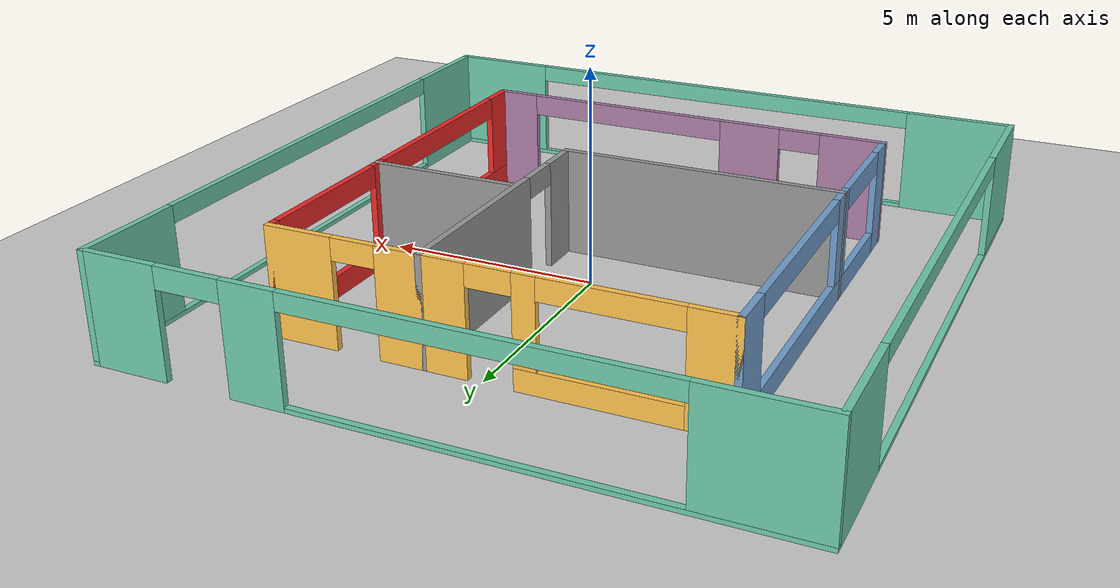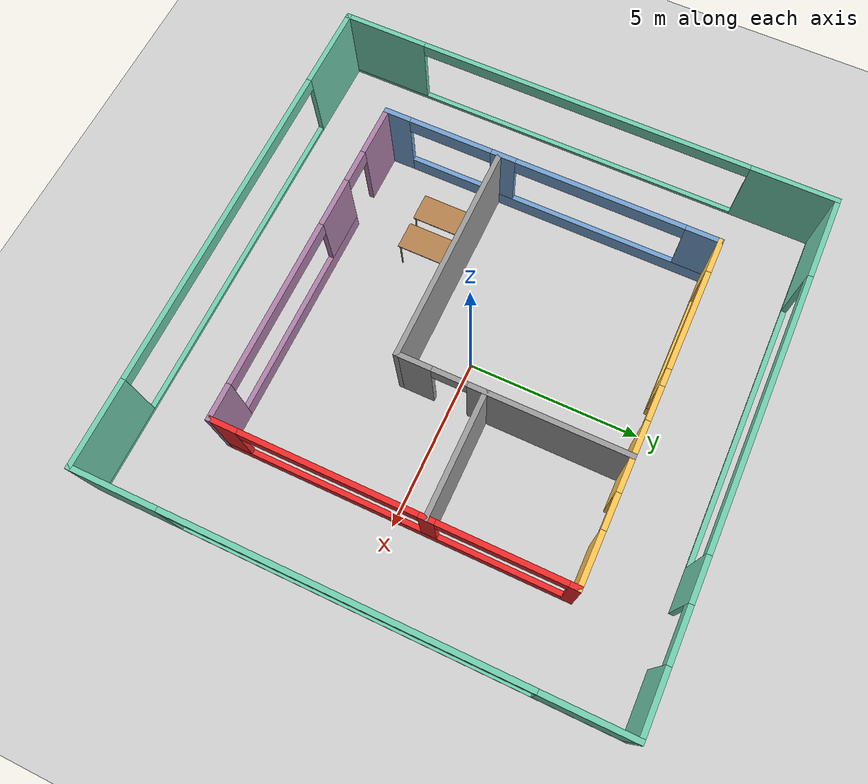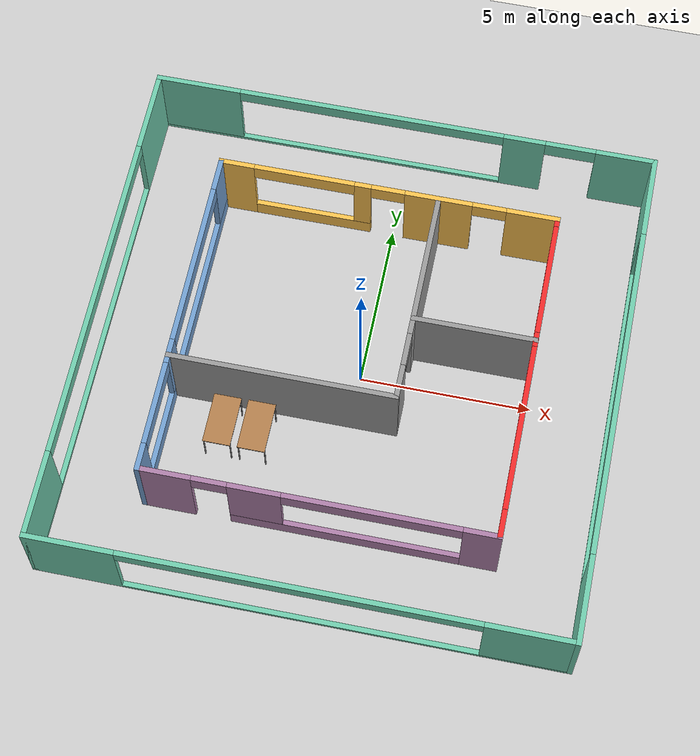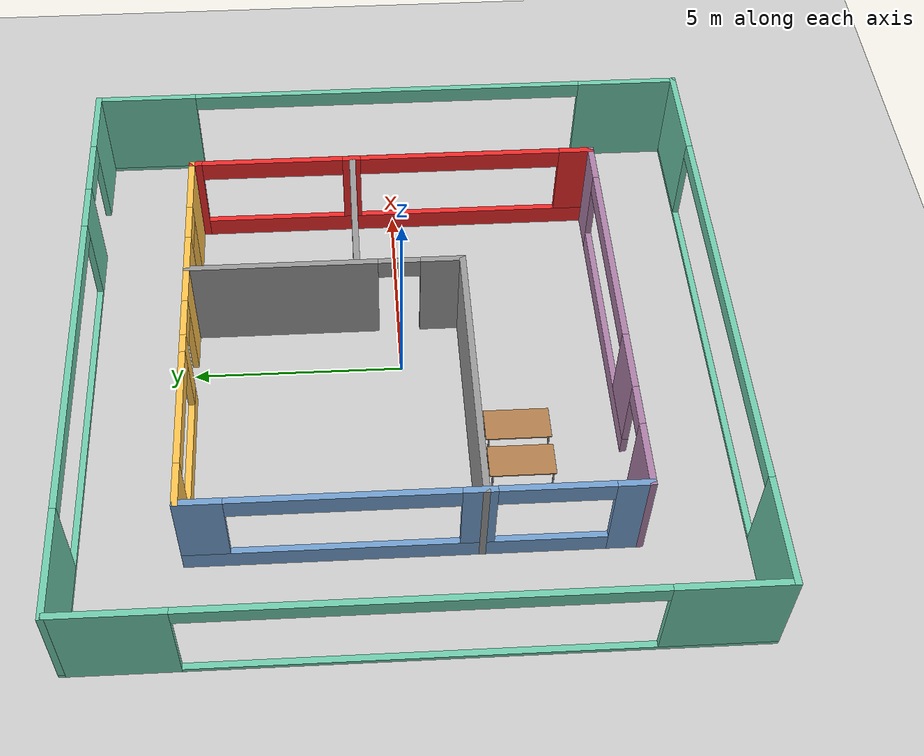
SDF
<sdf version="1.6">
 <world name="default">
  <model name="ground_plane">
   <static>1</static>
   <link name="link">
    <collision name="collision">
     <geometry><plane><normal>0 0 1</normal><size>100 100</size></plane></geometry>
     <surface>
      <contact><collide_bitmask>65535</collide_bitmask></contact>
      <friction><ode><mu>100</mu><mu2>50</mu2></ode></friction>
     </surface>
    </collision>
    <visual name="visual">
     <cast_shadows>0</cast_shadows>
     <geometry><plane><normal>0 0 1</normal><size>100 100</size></plane></geometry>
     <material>
      <script><uri>file://media/materials/scripts/gazebo.material</uri><name>Gazebo/Grey</name></script>
     </material>
    </visual>
   </link>
  </model>
  <model name="model_0">
   <pose>-0.195601 0 0 0 -0 0</pose>
   <link name="Wall_11">
    <pose>0 5 0 0 -0 0</pose>
    <visual name="Wall_11_Visual_0">
     <pose>-4.5375 0 1.25 0 -0 0</pose>
     <geometry><box><size>1.075 0.15 2.5</size></box></geometry>
     <material>
      <script><uri>file://media/materials/scripts/gazebo.material</uri><name>Gazebo/Grey</name></script>
      <ambient>1 0.764706 0.305882 1</ambient>
     </material>
     <meta><layer>0</layer></meta>
    </visual>
    <collision name="Wall_11_Collision_0">
     <geometry><box><size>1.075 0.15 2.5</size></box></geometry>
     <pose>-4.5375 0 1.25 0 -0 0</pose>
    </collision>
    <visual name="Wall_11_Visual_1">
     <pose>1.5 0 1.25 0 -0 0</pose>
     <geometry><box><size>2 0.15 2.5</size></box></geometry>
     <material>
      <script><uri>file://media/materials/scripts/gazebo.material</uri><name>Gazebo/Grey</name></script>
      <ambient>1 0.764706 0.305882 1</ambient>
     </material>
     <meta><layer>0</layer></meta>
    </visual>
    <collision name="Wall_11_Collision_1">
     <geometry><box><size>2 0.15 2.5</size></box></geometry>
     <pose>1.5 0 1.25 0 -0 0</pose>
    </collision>
    <visual name="Wall_11_Visual_2">
     <pose>4.2875 0 1.25 0 -0 0</pose>
     <geometry><box><size>1.575 0.15 2.5</size></box></geometry>
     <material>
      <script><uri>file://media/materials/scripts/gazebo.material</uri><name>Gazebo/Grey</name></script>
      <ambient>1 0.764706 0.305882 1</ambient>
     </material>
     <meta><layer>0</layer></meta>
    </visual>
    <collision name="Wall_11_Collision_2">
     <geometry><box><size>1.575 0.15 2.5</size></box></geometry>
     <pose>4.2875 0 1.25 0 -0 0</pose>
    </collision>
    <visual name="Wall_11_Visual_3">
     <pose>-2.25 0 0.25 0 -0 0</pose>
     <geometry><box><size>3.5 0.15 0.5</size></box></geometry>
     <material>
      <script><uri>file://media/materials/scripts/gazebo.material</uri><name>Gazebo/Grey</name></script>
      <ambient>1 0.764706 0.305882 1</ambient>
     </material>
     <meta><layer>0</layer></meta>
    </visual>
    <collision name="Wall_11_Collision_3">
     <geometry><box><size>3.5 0.15 0.5</size></box></geometry>
     <pose>-2.25 0 0.25 0 -0 0</pose>
    </collision>
    <visual name="Wall_11_Visual_4">
     <pose>-0.75 0 1.5 0 -0 0</pose>
     <geometry><box><size>0.5 0.15 2</size></box></geometry>
     <material>
      <script><uri>file://media/materials/scripts/gazebo.material</uri><name>Gazebo/Grey</name></script>
      <ambient>1 0.764706 0.305882 1</ambient>
     </material>
     <meta><layer>0</layer></meta>
    </visual>
    <collision name="Wall_11_Collision_4">
     <geometry><box><size>0.5 0.15 2</size></box></geometry>
     <pose>-0.75 0 1.5 0 -0 0</pose>
    </collision>
    <visual name="Wall_11_Visual_5">
     <pose>-2.5 0 2.25 0 -0 0</pose>
     <geometry><box><size>3 0.15 0.5</size></box></geometry>
     <material>
      <script><uri>file://media/materials/scripts/gazebo.material</uri><name>Gazebo/Grey</name></script>
      <ambient>1 0.764706 0.305882 1</ambient>
     </material>
     <meta><layer>0</layer></meta>
    </visual>
    <collision name="Wall_11_Collision_5">
     <geometry><box><size>3 0.15 0.5</size></box></geometry>
     <pose>-2.5 0 2.25 0 -0 0</pose>
    </collision>
    <visual name="Wall_11_Visual_6">
     <pose>3 0 2.25 0 -0 0</pose>
     <geometry><box><size>1 0.15 0.5</size></box></geometry>
     <material>
      <script><uri>file://media/materials/scripts/gazebo.material</uri><name>Gazebo/Grey</name></script>
      <ambient>1 0.764706 0.305882 1</ambient>
     </material>
     <meta><layer>0</layer></meta>
    </visual>
    <collision name="Wall_11_Collision_6">
     <geometry><box><size>1 0.15 0.5</size></box></geometry>
     <pose>3 0 2.25 0 -0 0</pose>
    </collision>
    <visual name="Wall_11_Visual_7">
     <pose>0 0 2.25 0 -0 0</pose>
     <geometry><box><size>1 0.15 0.5</size></box></geometry>
     <material>
      <script><uri>file://media/materials/scripts/gazebo.material</uri><name>Gazebo/Grey</name></script>
      <ambient>1 0.764706 0.305882 1</ambient>
     </material>
     <meta><layer>0</layer></meta>
    </visual>
    <collision name="Wall_11_Collision_7">
     <geometry><box><size>1 0.15 0.5</size></box></geometry>
     <pose>0 0 2.25 0 -0 0</pose>
    </collision>
   </link>
   <link name="Wall_12">
    <pose>5 0 0 0 -0 -1.5708</pose>
    <visual name="Wall_12_Visual_0">
     <pose>-4.9125 0 1.25 0 -0 0</pose>
     <geometry><box><size>0.325 0.15 2.5</size></box></geometry>
     <material>
      <script><uri>file://media/materials/scripts/gazebo.material</uri><name>Gazebo/Grey</name></script>
      <ambient>0.937255 0.160784 0.160784 1</ambient>
     </material>
     <meta><layer>0</layer></meta>
    </visual>
    <collision name="Wall_12_Collision_0">
     <geometry><box><size>0.325 0.15 2.5</size></box></geometry>
     <pose>-4.9125 0 1.25 0 -0 0</pose>
    </collision>
    <visual name="Wall_12_Visual_1">
     <pose>0.1625 0 0.25 0 -0 0</pose>
     <geometry><box><size>9.825 0.15 0.5</size></box></geometry>
     <material>
      <script><uri>file://media/materials/scripts/gazebo.material</uri><name>Gazebo/Grey</name></script>
      <ambient>0.937255 0.160784 0.160784 1</ambient>
     </material>
     <meta><layer>0</layer></meta>
    </visual>
    <collision name="Wall_12_Collision_1">
     <geometry><box><size>9.825 0.15 0.5</size></box></geometry>
     <pose>0.1625 0 0.25 0 -0 0</pose>
    </collision>
    <visual name="Wall_12_Visual_2">
     <pose>-1.025 0 1.5 0 -0 0</pose>
     <geometry><box><size>0.45 0.15 2</size></box></geometry>
     <material>
      <script><uri>file://media/materials/scripts/gazebo.material</uri><name>Gazebo/Grey</name></script>
      <ambient>0.937255 0.160784 0.160784 1</ambient>
     </material>
     <meta><layer>0</layer></meta>
    </visual>
    <collision name="Wall_12_Collision_2">
     <geometry><box><size>0.45 0.15 2</size></box></geometry>
     <pose>-1.025 0 1.5 0 -0 0</pose>
    </collision>
    <visual name="Wall_12_Visual_3">
     <pose>4.6375 0 1.5 0 -0 0</pose>
     <geometry><box><size>0.875 0.15 2</size></box></geometry>
     <material>
      <script><uri>file://media/materials/scripts/gazebo.material</uri><name>Gazebo/Grey</name></script>
      <ambient>0.937255 0.160784 0.160784 1</ambient>
     </material>
     <meta><layer>0</layer></meta>
    </visual>
    <collision name="Wall_12_Collision_3">
     <geometry><box><size>0.875 0.15 2</size></box></geometry>
     <pose>4.6375 0 1.5 0 -0 0</pose>
    </collision>
    <visual name="Wall_12_Visual_4">
     <pose>-3 0 2.25 0 -0 0</pose>
     <geometry><box><size>3.5 0.15 0.5</size></box></geometry>
     <material>
      <script><uri>file://media/materials/scripts/gazebo.material</uri><name>Gazebo/Grey</name></script>
      <ambient>0.937255 0.160784 0.160784 1</ambient>
     </material>
     <meta><layer>0</layer></meta>
    </visual>
    <collision name="Wall_12_Collision_4">
     <geometry><box><size>3.5 0.15 0.5</size></box></geometry>
     <pose>-3 0 2.25 0 -0 0</pose>
    </collision>
    <visual name="Wall_12_Visual_5">
     <pose>1.7 0 2.25 0 -0 0</pose>
     <geometry><box><size>5 0.15 0.5</size></box></geometry>
     <material>
      <script><uri>file://media/materials/scripts/gazebo.material</uri><name>Gazebo/Grey</name></script>
      <ambient>0.937255 0.160784 0.160784 1</ambient>
     </material>
     <meta><layer>0</layer></meta>
    </visual>
    <collision name="Wall_12_Collision_5">
     <geometry><box><size>5 0.15 0.5</size></box></geometry>
     <pose>1.7 0 2.25 0 -0 0</pose>
    </collision>
   </link>
   <link name="Wall_13">
    <pose>0 -5 0 0 -0 3.14159</pose>
    <visual name="Wall_13_Visual_0">
     <pose>-4.5375 0 1.25 0 -0 0</pose>
     <geometry><box><size>1.075 0.15 2.5</size></box></geometry>
     <material>
      <script><uri>file://media/materials/scripts/gazebo.material</uri><name>Gazebo/Grey</name></script>
      <ambient>0.678431 0.498039 0.658824 1</ambient>
     </material>
     <meta><layer>0</layer></meta>
    </visual>
    <collision name="Wall_13_Collision_0">
     <geometry><box><size>1.075 0.15 2.5</size></box></geometry>
     <pose>-4.5375 0 1.25 0 -0 0</pose>
    </collision>
    <visual name="Wall_13_Visual_1">
     <pose>4.2875 0 1.25 0 -0 0</pose>
     <geometry><box><size>1.575 0.15 2.5</size></box></geometry>
     <material>
      <script><uri>file://media/materials/scripts/gazebo.material</uri><name>Gazebo/Grey</name></script>
      <ambient>0.678431 0.498039 0.658824 1</ambient>
     </material>
     <meta><layer>0</layer></meta>
    </visual>
    <collision name="Wall_13_Collision_1">
     <geometry><box><size>1.575 0.15 2.5</size></box></geometry>
     <pose>4.2875 0 1.25 0 -0 0</pose>
    </collision>
    <visual name="Wall_13_Visual_2">
     <pose>-0.75 0 0.25 0 -0 0</pose>
     <geometry><box><size>6.5 0.15 0.5</size></box></geometry>
     <material>
      <script><uri>file://media/materials/scripts/gazebo.material</uri><name>Gazebo/Grey</name></script>
      <ambient>0.678431 0.498039 0.658824 1</ambient>
     </material>
     <meta><layer>0</layer></meta>
    </visual>
    <collision name="Wall_13_Collision_2">
     <geometry><box><size>6.5 0.15 0.5</size></box></geometry>
     <pose>-0.75 0 0.25 0 -0 0</pose>
    </collision>
    <visual name="Wall_13_Visual_3">
     <pose>1.75 0 1.5 0 -0 0</pose>
     <geometry><box><size>1.5 0.15 2</size></box></geometry>
     <material>
      <script><uri>file://media/materials/scripts/gazebo.material</uri><name>Gazebo/Grey</name></script>
      <ambient>0.678431 0.498039 0.658824 1</ambient>
     </material>
     <meta><layer>0</layer></meta>
    </visual>
    <collision name="Wall_13_Collision_3">
     <geometry><box><size>1.5 0.15 2</size></box></geometry>
     <pose>1.75 0 1.5 0 -0 0</pose>
    </collision>
    <visual name="Wall_13_Visual_4">
     <pose>-1.5 0 2.25 0 -0 0</pose>
     <geometry><box><size>5 0.15 0.5</size></box></geometry>
     <material>
      <script><uri>file://media/materials/scripts/gazebo.material</uri><name>Gazebo/Grey</name></script>
      <ambient>0.678431 0.498039 0.658824 1</ambient>
     </material>
     <meta><layer>0</layer></meta>
    </visual>
    <collision name="Wall_13_Collision_4">
     <geometry><box><size>5 0.15 0.5</size></box></geometry>
     <pose>-1.5 0 2.25 0 -0 0</pose>
    </collision>
    <visual name="Wall_13_Visual_5">
     <pose>3 0 2.25 0 -0 0</pose>
     <geometry><box><size>1 0.15 0.5</size></box></geometry>
     <material>
      <script><uri>file://media/materials/scripts/gazebo.material</uri><name>Gazebo/Grey</name></script>
      <ambient>0.678431 0.498039 0.658824 1</ambient>
     </material>
     <meta><layer>0</layer></meta>
    </visual>
    <collision name="Wall_13_Collision_5">
     <geometry><box><size>1 0.15 0.5</size></box></geometry>
     <pose>3 0 2.25 0 -0 0</pose>
    </collision>
   </link>
   <link name="Wall_14">
    <pose>-5 0 0 0 -0 1.5708</pose>
    <visual name="Wall_14_Visual_0">
     <pose>-4.6625 0 1.25 0 -0 0</pose>
     <geometry><box><size>0.825 0.15 2.5</size></box></geometry>
     <material>
      <script><uri>file://media/materials/scripts/gazebo.material</uri><name>Gazebo/Grey</name></script>
      <ambient>0.447059 0.623529 0.811765 1</ambient>
     </material>
     <meta><layer>0</layer></meta>
    </visual>
    <collision name="Wall_14_Collision_0">
     <geometry><box><size>0.825 0.15 2.5</size></box></geometry>
     <pose>-4.6625 0 1.25 0 -0 0</pose>
    </collision>
    <visual name="Wall_14_Visual_1">
     <pose>0.4125 0 0.25 0 -0 0</pose>
     <geometry><box><size>9.325 0.15 0.5</size></box></geometry>
     <material>
      <script><uri>file://media/materials/scripts/gazebo.material</uri><name>Gazebo/Grey</name></script>
      <ambient>0.447059 0.623529 0.811765 1</ambient>
     </material>
     <meta><layer>0</layer></meta>
    </visual>
    <collision name="Wall_14_Collision_1">
     <geometry><box><size>9.325 0.15 0.5</size></box></geometry>
     <pose>0.4125 0 0.25 0 -0 0</pose>
    </collision>
    <visual name="Wall_14_Visual_2">
     <pose>-1.375 0 1.5 0 -0 0</pose>
     <geometry><box><size>0.75 0.15 2</size></box></geometry>
     <material>
      <script><uri>file://media/materials/scripts/gazebo.material</uri><name>Gazebo/Grey</name></script>
      <ambient>0.447059 0.623529 0.811765 1</ambient>
     </material>
     <meta><layer>0</layer></meta>
    </visual>
    <collision name="Wall_14_Collision_2">
     <geometry><box><size>0.75 0.15 2</size></box></geometry>
     <pose>-1.375 0 1.5 0 -0 0</pose>
    </collision>
    <visual name="Wall_14_Visual_3">
     <pose>4.5375 0 1.5 0 -0 0</pose>
     <geometry><box><size>1.075 0.15 2</size></box></geometry>
     <material>
      <script><uri>file://media/materials/scripts/gazebo.material</uri><name>Gazebo/Grey</name></script>
      <ambient>0.447059 0.623529 0.811765 1</ambient>
     </material>
     <meta><layer>0</layer></meta>
    </visual>
    <collision name="Wall_14_Collision_3">
     <geometry><box><size>1.075 0.15 2</size></box></geometry>
     <pose>4.5375 0 1.5 0 -0 0</pose>
    </collision>
    <visual name="Wall_14_Visual_4">
     <pose>-3 0 2.25 0 -0 0</pose>
     <geometry><box><size>2.5 0.15 0.5</size></box></geometry>
     <material>
      <script><uri>file://media/materials/scripts/gazebo.material</uri><name>Gazebo/Grey</name></script>
      <ambient>0.447059 0.623529 0.811765 1</ambient>
     </material>
     <meta><layer>0</layer></meta>
    </visual>
    <collision name="Wall_14_Collision_4">
     <geometry><box><size>2.5 0.15 0.5</size></box></geometry>
     <pose>-3 0 2.25 0 -0 0</pose>
    </collision>
    <visual name="Wall_14_Visual_5">
     <pose>1.5 0 2.25 0 -0 0</pose>
     <geometry><box><size>5 0.15 0.5</size></box></geometry>
     <material>
      <script><uri>file://media/materials/scripts/gazebo.material</uri><name>Gazebo/Grey</name></script>
      <ambient>0.447059 0.623529 0.811765 1</ambient>
     </material>
     <meta><layer>0</layer></meta>
    </visual>
    <collision name="Wall_14_Collision_5">
     <geometry><box><size>5 0.15 0.5</size></box></geometry>
     <pose>1.5 0 2.25 0 -0 0</pose>
    </collision>
   </link>
   <link name="Wall_16">
    <pose>1.5 1.75 0 0 -0 -1.5708</pose>
    <visual name="Wall_16_Visual_0">
     <pose>-1.0375 0 1.25 0 -0 0</pose>
     <geometry><box><size>4.575 0.15 2.5</size></box></geometry>
     <material>
      <script><uri>file://media/materials/scripts/gazebo.material</uri><name>Gazebo/Grey</name></script>
      <ambient>1 1 1 1</ambient>
     </material>
     <meta><layer>0</layer></meta>
    </visual>
    <collision name="Wall_16_Collision_0">
     <geometry><box><size>4.575 0.15 2.5</size></box></geometry>
     <pose>-1.0375 0 1.25 0 -0 0</pose>
    </collision>
    <visual name="Wall_16_Visual_1">
     <pose>2.7875 0 1.25 0 -0 0</pose>
     <geometry><box><size>1.075 0.15 2.5</size></box></geometry>
     <material>
      <script><uri>file://media/materials/scripts/gazebo.material</uri><name>Gazebo/Grey</name></script>
      <ambient>1 1 1 1</ambient>
     </material>
     <meta><layer>0</layer></meta>
    </visual>
    <collision name="Wall_16_Collision_1">
     <geometry><box><size>1.075 0.15 2.5</size></box></geometry>
     <pose>2.7875 0 1.25 0 -0 0</pose>
    </collision>
    <visual name="Wall_16_Visual_2">
     <pose>1.75 0 2.25 0 -0 0</pose>
     <geometry><box><size>1 0.15 0.5</size></box></geometry>
     <material>
      <script><uri>file://media/materials/scripts/gazebo.material</uri><name>Gazebo/Grey</name></script>
      <ambient>1 1 1 1</ambient>
     </material>
     <meta><layer>0</layer></meta>
    </visual>
    <collision name="Wall_16_Collision_2">
     <geometry><box><size>1 0.15 0.5</size></box></geometry>
     <pose>1.75 0 2.25 0 -0 0</pose>
    </collision>
   </link>
   <link name="Wall_17">
    <collision name="Wall_17_Collision">
     <geometry><box><size>6.65 0.15 2.5</size></box></geometry>
     <pose>0 0 1.25 0 -0 0</pose>
    </collision>
    <visual name="Wall_17_Visual">
     <pose>0 0 1.25 0 -0 0</pose>
     <geometry><box><size>6.65 0.15 2.5</size></box></geometry>
     <material>
      <script><uri>file://media/materials/scripts/gazebo.material</uri><name>Gazebo/Grey</name></script>
      <ambient>1 1 1 1</ambient>
     </material>
     <meta><layer>0</layer></meta>
    </visual>
    <pose>-1.75 -1.5 0 0 -0 3.14159</pose>
   </link>
   <link name="Wall_19">
    <collision name="Wall_19_Collision">
     <geometry><box><size>3.65 0.15 2.5</size></box></geometry>
     <pose>0 0 1.25 0 -0 0</pose>
    </collision>
    <visual name="Wall_19_Visual">
     <pose>0 0 1.25 0 -0 0</pose>
     <geometry><box><size>3.65 0.15 2.5</size></box></geometry>
     <material>
      <script><uri>file://media/materials/scripts/gazebo.material</uri><name>Gazebo/Grey</name></script>
      <ambient>1 1 1 1</ambient>
     </material>
     <meta><layer>0</layer></meta>
    </visual>
    <pose>3.25 1 0 0 -0 0</pose>
   </link>
   <link name="Wall_21">
    <pose>-7.5 0 0 0 -0 -1.5708</pose>
    <visual name="Wall_21_Visual_0">
     <pose>-6.2875 0 1.25 0 -0 0</pose>
     <geometry><box><size>2.575 0.15 2.5</size></box></geometry>
     <material>
      <script><uri>file://media/materials/scripts/gazebo.material</uri><name>Gazebo/Grey</name></script>
      <ambient>0.435294 0.796078 0.67451 1</ambient>
     </material>
     <meta><layer>0</layer></meta>
    </visual>
    <collision name="Wall_21_Collision_0">
     <geometry><box><size>2.575 0.15 2.5</size></box></geometry>
     <pose>-6.2875 0 1.25 0 -0 0</pose>
    </collision>
    <visual name="Wall_21_Visual_1">
     <pose>1.2875 0 0.05 0 -0 0</pose>
     <geometry><box><size>12.575 0.15 0.1</size></box></geometry>
     <material>
      <script><uri>file://media/materials/scripts/gazebo.material</uri><name>Gazebo/Grey</name></script>
      <ambient>0.435294 0.796078 0.67451 1</ambient>
     </material>
     <meta><layer>0</layer></meta>
    </visual>
    <collision name="Wall_21_Collision_1">
     <geometry><box><size>12.575 0.15 0.1</size></box></geometry>
     <pose>1.2875 0 0.05 0 -0 0</pose>
    </collision>
    <visual name="Wall_21_Visual_2">
     <pose>6.2875 0 1.3 0 -0 0</pose>
     <geometry><box><size>2.575 0.15 2.4</size></box></geometry>
     <material>
      <script><uri>file://media/materials/scripts/gazebo.material</uri><name>Gazebo/Grey</name></script>
      <ambient>0.435294 0.796078 0.67451 1</ambient>
     </material>
     <meta><layer>0</layer></meta>
    </visual>
    <collision name="Wall_21_Collision_2">
     <geometry><box><size>2.575 0.15 2.4</size></box></geometry>
     <pose>6.2875 0 1.3 0 -0 0</pose>
    </collision>
    <visual name="Wall_21_Visual_3">
     <pose>0 0 2.3 0 -0 0</pose>
     <geometry><box><size>10 0.15 0.4</size></box></geometry>
     <material>
      <script><uri>file://media/materials/scripts/gazebo.material</uri><name>Gazebo/Grey</name></script>
      <ambient>0.435294 0.796078 0.67451 1</ambient>
     </material>
     <meta><layer>0</layer></meta>
    </visual>
    <collision name="Wall_21_Collision_3">
     <geometry><box><size>10 0.15 0.4</size></box></geometry>
     <pose>0 0 2.3 0 -0 0</pose>
    </collision>
   </link>
   <link name="Wall_22">
    <pose>0 -7.5 0 0 -0 0</pose>
    <visual name="Wall_22_Visual_0">
     <pose>-6.2875 0 1.25 0 -0 0</pose>
     <geometry><box><size>2.575 0.15 2.5</size></box></geometry>
     <material>
      <script><uri>file://media/materials/scripts/gazebo.material</uri><name>Gazebo/Grey</name></script>
      <ambient>0.435294 0.796078 0.67451 1</ambient>
     </material>
     <meta><layer>0</layer></meta>
    </visual>
    <collision name="Wall_22_Collision_0">
     <geometry><box><size>2.575 0.15 2.5</size></box></geometry>
     <pose>-6.2875 0 1.25 0 -0 0</pose>
    </collision>
    <visual name="Wall_22_Visual_1">
     <pose>1.2875 0 0.05 0 -0 0</pose>
     <geometry><box><size>12.575 0.15 0.1</size></box></geometry>
     <material>
      <script><uri>file://media/materials/scripts/gazebo.material</uri><name>Gazebo/Grey</name></script>
      <ambient>0.435294 0.796078 0.67451 1</ambient>
     </material>
     <meta><layer>0</layer></meta>
    </visual>
    <collision name="Wall_22_Collision_1">
     <geometry><box><size>12.575 0.15 0.1</size></box></geometry>
     <pose>1.2875 0 0.05 0 -0 0</pose>
    </collision>
    <visual name="Wall_22_Visual_2">
     <pose>6.2875 0 1.3 0 -0 0</pose>
     <geometry><box><size>2.575 0.15 2.4</size></box></geometry>
     <material>
      <script><uri>file://media/materials/scripts/gazebo.material</uri><name>Gazebo/Grey</name></script>
      <ambient>0.435294 0.796078 0.67451 1</ambient>
     </material>
     <meta><layer>0</layer></meta>
    </visual>
    <collision name="Wall_22_Collision_2">
     <geometry><box><size>2.575 0.15 2.4</size></box></geometry>
     <pose>6.2875 0 1.3 0 -0 0</pose>
    </collision>
    <visual name="Wall_22_Visual_3">
     <pose>0 0 2.3 0 -0 0</pose>
     <geometry><box><size>10 0.15 0.4</size></box></geometry>
     <material>
      <script><uri>file://media/materials/scripts/gazebo.material</uri><name>Gazebo/Grey</name></script>
      <ambient>0.435294 0.796078 0.67451 1</ambient>
     </material>
     <meta><layer>0</layer></meta>
    </visual>
    <collision name="Wall_22_Collision_3">
     <geometry><box><size>10 0.15 0.4</size></box></geometry>
     <pose>0 0 2.3 0 -0 0</pose>
    </collision>
   </link>
   <link name="Wall_23">
    <pose>7.5 0 0 0 -0 1.5708</pose>
    <visual name="Wall_23_Visual_0">
     <pose>-6.2875 0 1.25 0 -0 0</pose>
     <geometry><box><size>2.575 0.15 2.5</size></box></geometry>
     <material>
      <script><uri>file://media/materials/scripts/gazebo.material</uri><name>Gazebo/Grey</name></script>
      <ambient>0.435294 0.796078 0.67451 1</ambient>
     </material>
     <meta><layer>0</layer></meta>
    </visual>
    <collision name="Wall_23_Collision_0">
     <geometry><box><size>2.575 0.15 2.5</size></box></geometry>
     <pose>-6.2875 0 1.25 0 -0 0</pose>
    </collision>
    <visual name="Wall_23_Visual_1">
     <pose>1.2875 0 0.05 0 -0 0</pose>
     <geometry><box><size>12.575 0.15 0.1</size></box></geometry>
     <material>
      <script><uri>file://media/materials/scripts/gazebo.material</uri><name>Gazebo/Grey</name></script>
      <ambient>0.435294 0.796078 0.67451 1</ambient>
     </material>
     <meta><layer>0</layer></meta>
    </visual>
    <collision name="Wall_23_Collision_1">
     <geometry><box><size>12.575 0.15 0.1</size></box></geometry>
     <pose>1.2875 0 0.05 0 -0 0</pose>
    </collision>
    <visual name="Wall_23_Visual_2">
     <pose>6.2875 0 1.3 0 -0 0</pose>
     <geometry><box><size>2.575 0.15 2.4</size></box></geometry>
     <material>
      <script><uri>file://media/materials/scripts/gazebo.material</uri><name>Gazebo/Grey</name></script>
      <ambient>0.435294 0.796078 0.67451 1</ambient>
     </material>
     <meta><layer>0</layer></meta>
    </visual>
    <collision name="Wall_23_Collision_2">
     <geometry><box><size>2.575 0.15 2.4</size></box></geometry>
     <pose>6.2875 0 1.3 0 -0 0</pose>
    </collision>
    <visual name="Wall_23_Visual_3">
     <pose>0 0 2.3 0 -0 0</pose>
     <geometry><box><size>10 0.15 0.4</size></box></geometry>
     <material>
      <script><uri>file://media/materials/scripts/gazebo.material</uri><name>Gazebo/Grey</name></script>
      <ambient>0.435294 0.796078 0.67451 1</ambient>
     </material>
     <meta><layer>0</layer></meta>
    </visual>
    <collision name="Wall_23_Collision_3">
     <geometry><box><size>10 0.15 0.4</size></box></geometry>
     <pose>0 0 2.3 0 -0 0</pose>
    </collision>
   </link>
   <link name="Wall_24">
    <pose>0 7.5 0 0 -0 3.14159</pose>
    <visual name="Wall_24_Visual_0">
     <pose>-6.6625 0 1.25 0 -0 0</pose>
     <geometry><box><size>1.825 0.15 2.5</size></box></geometry>
     <material>
      <script><uri>file://media/materials/scripts/gazebo.material</uri><name>Gazebo/Grey</name></script>
      <ambient>0.435294 0.796078 0.67451 1</ambient>
     </material>
     <meta><layer>0</layer></meta>
    </visual>
    <collision name="Wall_24_Collision_0">
     <geometry><box><size>1.825 0.15 2.5</size></box></geometry>
     <pose>-6.6625 0 1.25 0 -0 0</pose>
    </collision>
    <visual name="Wall_24_Visual_1">
     <pose>-3.625 0 1.25 0 -0 0</pose>
     <geometry><box><size>1.25 0.15 2.5</size></box></geometry>
     <material>
      <script><uri>file://media/materials/scripts/gazebo.material</uri><name>Gazebo/Grey</name></script>
      <ambient>0.435294 0.796078 0.67451 1</ambient>
     </material>
     <meta><layer>0</layer></meta>
    </visual>
    <collision name="Wall_24_Collision_1">
     <geometry><box><size>1.25 0.15 2.5</size></box></geometry>
     <pose>-3.625 0 1.25 0 -0 0</pose>
    </collision>
    <visual name="Wall_24_Visual_2">
     <pose>2.2875 0 0.05 0 -0 0</pose>
     <geometry><box><size>10.575 0.15 0.1</size></box></geometry>
     <material>
      <script><uri>file://media/materials/scripts/gazebo.material</uri><name>Gazebo/Grey</name></script>
      <ambient>0.435294 0.796078 0.67451 1</ambient>
     </material>
     <meta><layer>0</layer></meta>
    </visual>
    <collision name="Wall_24_Collision_2">
     <geometry><box><size>10.575 0.15 0.1</size></box></geometry>
     <pose>2.2875 0 0.05 0 -0 0</pose>
    </collision>
    <visual name="Wall_24_Visual_3">
     <pose>6.2875 0 1.3 0 -0 0</pose>
     <geometry><box><size>2.575 0.15 2.4</size></box></geometry>
     <material>
      <script><uri>file://media/materials/scripts/gazebo.material</uri><name>Gazebo/Grey</name></script>
      <ambient>0.435294 0.796078 0.67451 1</ambient>
     </material>
     <meta><layer>0</layer></meta>
    </visual>
    <collision name="Wall_24_Collision_3">
     <geometry><box><size>2.575 0.15 2.4</size></box></geometry>
     <pose>6.2875 0 1.3 0 -0 0</pose>
    </collision>
    <visual name="Wall_24_Visual_4">
     <pose>-5 0 2.25 0 -0 0</pose>
     <geometry><box><size>1.5 0.15 0.5</size></box></geometry>
     <material>
      <script><uri>file://media/materials/scripts/gazebo.material</uri><name>Gazebo/Grey</name></script>
      <ambient>0.435294 0.796078 0.67451 1</ambient>
     </material>
     <meta><layer>0</layer></meta>
    </visual>
    <collision name="Wall_24_Collision_4">
     <geometry><box><size>1.5 0.15 0.5</size></box></geometry>
     <pose>-5 0 2.25 0 -0 0</pose>
    </collision>
    <visual name="Wall_24_Visual_5">
     <pose>1 0 2.3 0 -0 0</pose>
     <geometry><box><size>8 0.15 0.4</size></box></geometry>
     <material>
      <script><uri>file://media/materials/scripts/gazebo.material</uri><name>Gazebo/Grey</name></script>
      <ambient>0.435294 0.796078 0.67451 1</ambient>
     </material>
     <meta><layer>0</layer></meta>
    </visual>
    <collision name="Wall_24_Collision_5">
     <geometry><box><size>8 0.15 0.4</size></box></geometry>
     <pose>1 0 2.3 0 -0 0</pose>
    </collision>
   </link>
   <static>1</static>
  </model>
  <model name="table">
   <static>1</static>
   <link name="link">
    <collision name="surface">
     <pose>0 0 1 0 -0 0</pose>
     <geometry><box><size>1.5 0.8 0.03</size></box></geometry>
     <surface><friction><ode><mu>0.6</mu><mu2>0.6</mu2></ode></friction></surface>
    </collision>
    <visual name="visual1">
     <pose>0 0 1 0 -0 0</pose>
     <geometry><box><size>1.5 0.8 0.03</size></box></geometry>
     <material>
      <script><uri>file://media/materials/scripts/gazebo.material</uri><name>Gazebo/Wood</name></script>
     </material>
    </visual>
    <collision name="front_left_leg">
     <pose>0.68 0.38 0.5 0 -0 0</pose>
     <geometry><cylinder><radius>0.02</radius><length>1</length></cylinder></geometry>
    </collision>
    <visual name="front_left_leg">
     <pose>0.68 0.38 0.5 0 -0 0</pose>
     <geometry><cylinder><radius>0.02</radius><length>1</length></cylinder></geometry>
     <material>
      <script><uri>file://media/materials/scripts/gazebo.material</uri><name>Gazebo/Grey</name></script>
     </material>
    </visual>
    <collision name="front_right_leg">
     <pose>0.68 -0.38 0.5 0 -0 0</pose>
     <geometry><cylinder><radius>0.02</radius><length>1</length></cylinder></geometry>
    </collision>
    <visual name="front_right_leg">
     <pose>0.68 -0.38 0.5 0 -0 0</pose>
     <geometry><cylinder><radius>0.02</radius><length>1</length></cylinder></geometry>
     <material>
      <script><uri>file://media/materials/scripts/gazebo.material</uri><name>Gazebo/Grey</name></script>
     </material>
    </visual>
    <collision name="back_right_leg">
     <pose>-0.68 -0.38 0.5 0 -0 0</pose>
     <geometry><cylinder><radius>0.02</radius><length>1</length></cylinder></geometry>
    </collision>
    <visual name="back_right_leg">
     <pose>-0.68 -0.38 0.5 0 -0 0</pose>
     <geometry><cylinder><radius>0.02</radius><length>1</length></cylinder></geometry>
     <material>
      <script><uri>file://media/materials/scripts/gazebo.material</uri><name>Gazebo/Grey</name></script>
     </material>
    </visual>
    <collision name="back_left_leg">
     <pose>-0.68 0.38 0.5 0 -0 0</pose>
     <geometry><cylinder><radius>0.02</radius><length>1</length></cylinder></geometry>
    </collision>
    <visual name="back_left_leg">
     <pose>-0.68 0.38 0.5 0 -0 0</pose>
     <geometry><cylinder><radius>0.02</radius><length>1</length></cylinder></geometry>
     <material>
      <script><uri>file://media/materials/scripts/gazebo.material</uri><name>Gazebo/Grey</name></script>
     </material>
    </visual>
   </link>
   <pose>-3.5 -2.5 0 0 -0 1.5708</pose>
  </model>
  <model name="table_clone">
   <static>1</static>
   <link name="link">
    <collision name="surface">
     <pose>0 0 1 0 -0 0</pose>
     <geometry><box><size>1.5 0.8 0.03</size></box></geometry>
     <surface><friction><ode><mu>0.6</mu><mu2>0.6</mu2></ode></friction></surface>
    </collision>
    <visual name="visual1">
     <pose>0 0 1 0 -0 0</pose>
     <geometry><box><size>1.5 0.8 0.03</size></box></geometry>
     <material>
      <script><uri>file://media/materials/scripts/gazebo.material</uri><name>Gazebo/Wood</name></script>
     </material>
    </visual>
    <collision name="front_left_leg">
     <pose>0.68 0.38 0.5 0 -0 0</pose>
     <geometry><cylinder><radius>0.02</radius><length>1</length></cylinder></geometry>
    </collision>
    <visual name="front_left_leg">
     <pose>0.68 0.38 0.5 0 -0 0</pose>
     <geometry><cylinder><radius>0.02</radius><length>1</length></cylinder></geometry>
     <material>
      <script><uri>file://media/materials/scripts/gazebo.material</uri><name>Gazebo/Grey</name></script>
     </material>
    </visual>
    <collision name="front_right_leg">
     <pose>0.68 -0.38 0.5 0 -0 0</pose>
     <geometry><cylinder><radius>0.02</radius><length>1</length></cylinder></geometry>
    </collision>
    <visual name="front_right_leg">
     <pose>0.68 -0.38 0.5 0 -0 0</pose>
     <geometry><cylinder><radius>0.02</radius><length>1</length></cylinder></geometry>
     <material>
      <script><uri>file://media/materials/scripts/gazebo.material</uri><name>Gazebo/Grey</name></script>
     </material>
    </visual>
    <collision name="back_right_leg">
     <pose>-0.68 -0.38 0.5 0 -0 0</pose>
     <geometry><cylinder><radius>0.02</radius><length>1</length></cylinder></geometry>
    </collision>
    <visual name="back_right_leg">
     <pose>-0.68 -0.38 0.5 0 -0 0</pose>
     <geometry><cylinder><radius>0.02</radius><length>1</length></cylinder></geometry>
     <material>
      <script><uri>file://media/materials/scripts/gazebo.material</uri><name>Gazebo/Grey</name></script>
     </material>
    </visual>
    <collision name="back_left_leg">
     <pose>-0.68 0.38 0.5 0 -0 0</pose>
     <geometry><cylinder><radius>0.02</radius><length>1</length></cylinder></geometry>
    </collision>
    <visual name="back_left_leg">
     <pose>-0.68 0.38 0.5 0 -0 0</pose>
     <geometry><cylinder><radius>0.02</radius><length>1</length></cylinder></geometry>
     <material>
      <script><uri>file://media/materials/scripts/gazebo.material</uri><name>Gazebo/Grey</name></script>
     </material>
    </visual>
   </link>
   <pose>-2.5 -2.5 0 0 -0 1.5708</pose>
  </model>
 </world>
</sdf>
